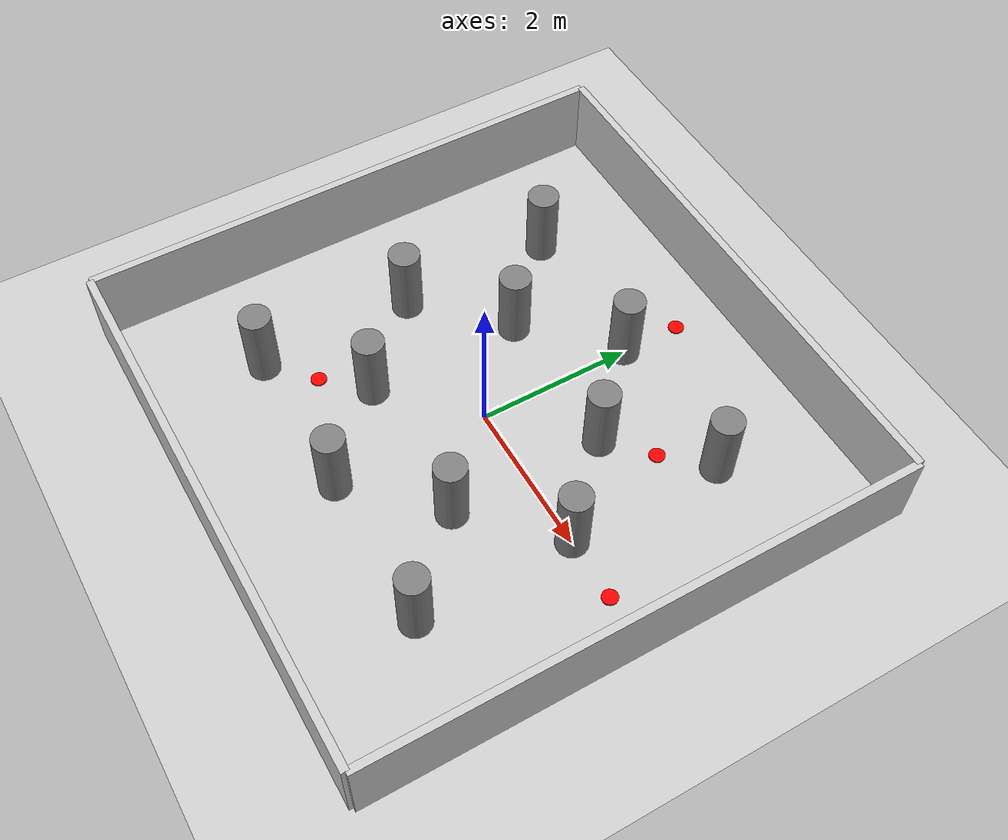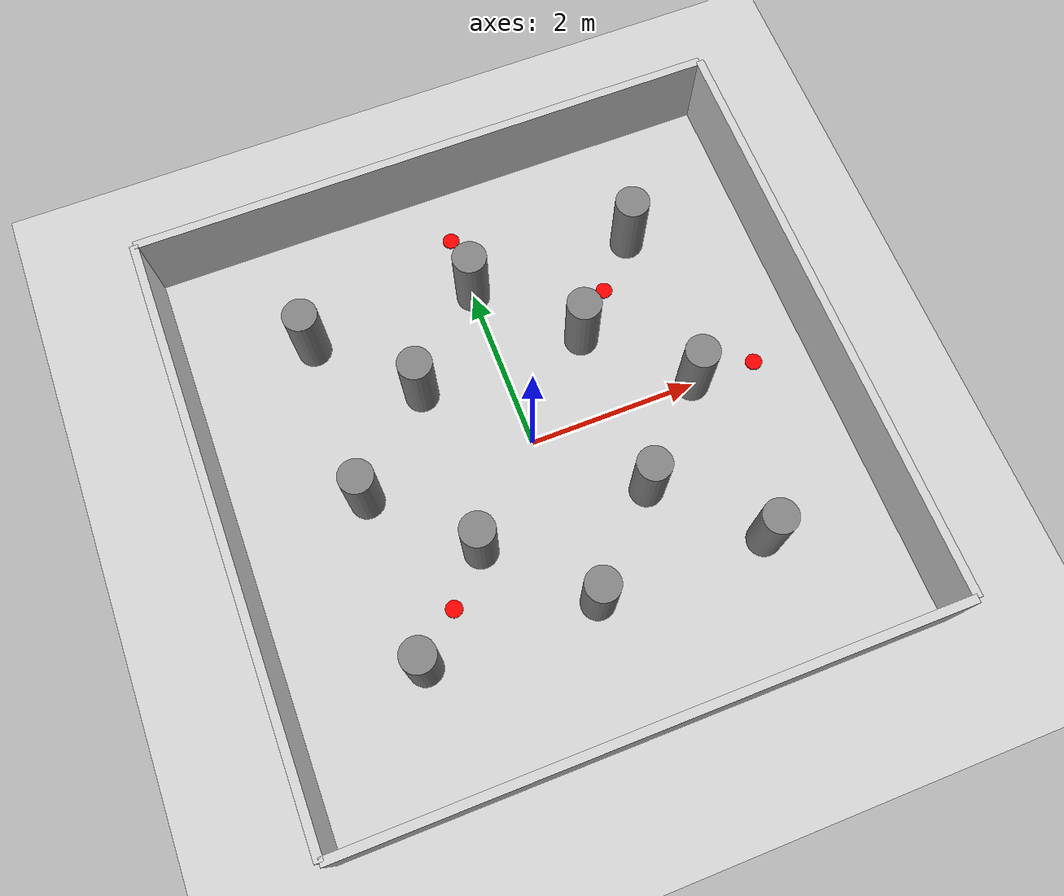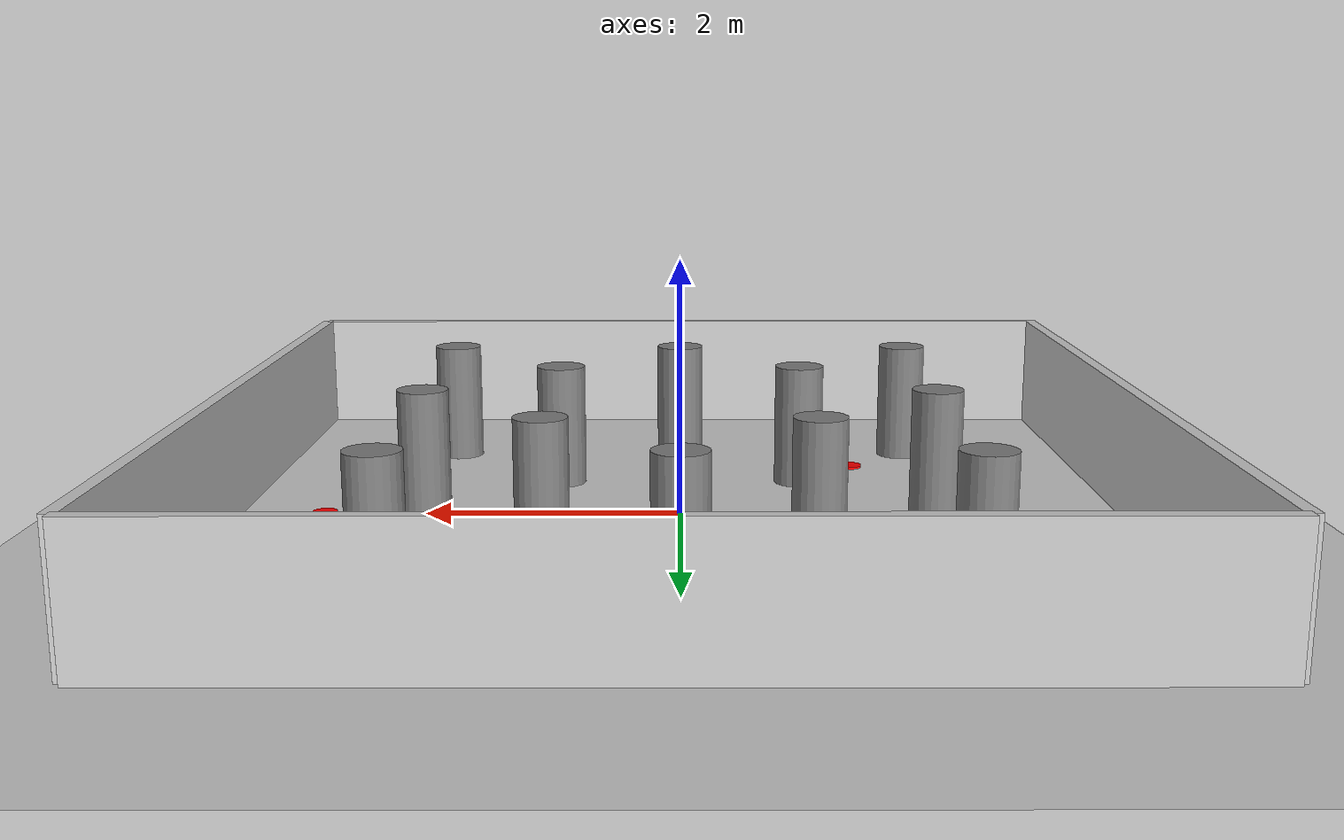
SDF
<?xml version="1.0" ?>
<sdf version="1.6">
  <world name="stage2">
    <!-- Basic Elements -->
    <include><uri>model://ground_plane</uri></include>
    <include><uri>model://sun</uri></include>

    <!-- Boundary Walls (Keeping the same) -->
    <model name="wall1">
      <static>true</static>
      <pose>0 3.5 0.5 0 0 0</pose>
      <link name="link">
        <collision name="collision">
          <geometry><box><size>7 0.1 1</size></box></geometry>
        </collision>
        <visual name="visual">
          <geometry><box><size>7 0.1 1</size></box></geometry>
          <material><ambient>0.8 0.8 0.8 1</ambient></material>
        </visual>
      </link>
    </model>

    <model name="wall2">
      <static>true</static>
      <pose>0 -3.5 0.5 0 0 0</pose>
      <link name="link">
        <collision name="collision">
          <geometry><box><size>7 0.1 1</size></box></geometry>
        </collision>
        <visual name="visual">
          <geometry><box><size>7 0.1 1</size></box></geometry>
          <material><ambient>0.8 0.8 0.8 1</ambient></material>
        </visual>
      </link>
    </model>

    <model name="wall3">
      <static>true</static>
      <pose>3.5 0 0.5 0 0 1.5708</pose>
      <link name="link">
        <collision name="collision">
          <geometry><box><size>7 0.1 1</size></box></geometry>
        </collision>
        <visual name="visual">
          <geometry><box><size>7 0.1 1</size></box></geometry>
          <material><ambient>0.8 0.8 0.8 1</ambient></material>
        </visual>
      </link>
    </model>

    <model name="wall4">
      <static>true</static>
      <pose>-3.5 0 0.5 0 0 1.5708</pose>
      <link name="link">
        <collision name="collision">
          <geometry><box><size>7 0.1 1</size></box></geometry>
        </collision>
        <visual name="visual">
          <geometry><box><size>7 0.1 1</size></box></geometry>
          <material><ambient>0.8 0.8 0.8 1</ambient></material>
        </visual>
      </link>
    </model>

    <!-- Inner Square Obstacles (4 corners) -->
    <model name="obstacle1">
      <static>true</static>
      <pose>-1 1 0.5 0 0 0</pose>
      <link name="link">
        <collision name="collision">
          <geometry><cylinder><radius>0.2</radius><length>1</length></cylinder></geometry>
        </collision>
        <visual name="visual">
          <geometry><cylinder><radius>0.2</radius><length>1</length></cylinder></geometry>
          <material><ambient>0.5 0.5 0.5 1</ambient></material>
        </visual>
      </link>
    </model>

    <model name="obstacle2">
      <static>true</static>
      <pose>1 1 0.5 0 0 0</pose>
      <link name="link">
        <collision name="collision">
          <geometry><cylinder><radius>0.2</radius><length>1</length></cylinder></geometry>
        </collision>
        <visual name="visual">
          <geometry><cylinder><radius>0.2</radius><length>1</length></cylinder></geometry>
          <material><ambient>0.5 0.5 0.5 1</ambient></material>
        </visual>
      </link>
    </model>

    <model name="obstacle3">
      <static>true</static>
      <pose>-1 -1 0.5 0 0 0</pose>
      <link name="link">
        <collision name="collision">
          <geometry><cylinder><radius>0.2</radius><length>1</length></cylinder></geometry>
        </collision>
        <visual name="visual">
          <geometry><cylinder><radius>0.2</radius><length>1</length></cylinder></geometry>
          <material><ambient>0.5 0.5 0.5 1</ambient></material>
        </visual>
      </link>
    </model>

    <model name="obstacle4">
      <static>true</static>
      <pose>1 -1 0.5 0 0 0</pose>
      <link name="link">
        <collision name="collision">
          <geometry><cylinder><radius>0.2</radius><length>1</length></cylinder></geometry>
        </collision>
        <visual name="visual">
          <geometry><cylinder><radius>0.2</radius><length>1</length></cylinder></geometry>
          <material><ambient>0.5 0.5 0.5 1</ambient></material>
        </visual>
      </link>
    </model>

    <!-- Outer Square Obstacles (4 corners) -->
    <model name="obstacle5">
      <static>true</static>
      <pose>-2 2 0.5 0 0 0</pose>
      <link name="link">
        <collision name="collision">
          <geometry><cylinder><radius>0.2</radius><length>1</length></cylinder></geometry>
        </collision>
        <visual name="visual">
          <geometry><cylinder><radius>0.2</radius><length>1</length></cylinder></geometry>
          <material><ambient>0.5 0.5 0.5 1</ambient></material>
        </visual>
      </link>
    </model>

    <model name="obstacle6">
      <static>true</static>
      <pose>2 2 0.5 0 0 0</pose>
      <link name="link">
        <collision name="collision">
          <geometry><cylinder><radius>0.2</radius><length>1</length></cylinder></geometry>
        </collision>
        <visual name="visual">
          <geometry><cylinder><radius>0.2</radius><length>1</length></cylinder></geometry>
          <material><ambient>0.5 0.5 0.5 1</ambient></material>
        </visual>
      </link>
    </model>

    <model name="obstacle7">
      <static>true</static>
      <pose>-2 -2 0.5 0 0 0</pose>
      <link name="link">
        <collision name="collision">
          <geometry><cylinder><radius>0.2</radius><length>1</length></cylinder></geometry>
        </collision>
        <visual name="visual">
          <geometry><cylinder><radius>0.2</radius><length>1</length></cylinder></geometry>
          <material><ambient>0.5 0.5 0.5 1</ambient></material>
        </visual>
      </link>
    </model>

    <model name="obstacle8">
      <static>true</static>
      <pose>2 -2 0.5 0 0 0</pose>
      <link name="link">
        <collision name="collision">
          <geometry><cylinder><radius>0.2</radius><length>1</length></cylinder></geometry>
        </collision>
        <visual name="visual">
          <geometry><cylinder><radius>0.2</radius><length>1</length></cylinder></geometry>
          <material><ambient>0.5 0.5 0.5 1</ambient></material>
        </visual>
      </link>
    </model>

    <!-- Cross Pattern Obstacles -->
    <model name="obstacle9">
      <static>true</static>
      <pose>0 2 0.5 0 0 0</pose>
      <link name="link">
        <collision name="collision">
          <geometry><cylinder><radius>0.2</radius><length>1</length></cylinder></geometry>
        </collision>
        <visual name="visual">
          <geometry><cylinder><radius>0.2</radius><length>1</length></cylinder></geometry>
          <material><ambient>0.5 0.5 0.5 1</ambient></material>
        </visual>
      </link>
    </model>

    <model name="obstacle10">
      <static>true</static>
      <pose>0 -2 0.5 0 0 0</pose>
      <link name="link">
        <collision name="collision">
          <geometry><cylinder><radius>0.2</radius><length>1</length></cylinder></geometry>
        </collision>
        <visual name="visual">
          <geometry><cylinder><radius>0.2</radius><length>1</length></cylinder></geometry>
          <material><ambient>0.5 0.5 0.5 1</ambient></material>
        </visual>
      </link>
    </model>

    <model name="obstacle11">
      <static>true</static>
      <pose>2 0 0.5 0 0 0</pose>
      <link name="link">
        <collision name="collision">
          <geometry><cylinder><radius>0.2</radius><length>1</length></cylinder></geometry>
        </collision>
        <visual name="visual">
          <geometry><cylinder><radius>0.2</radius><length>1</length></cylinder></geometry>
          <material><ambient>0.5 0.5 0.5 1</ambient></material>
        </visual>
      </link>
    </model>

    <model name="obstacle12">
      <static>true</static>
      <pose>-2 0 0.5 0 0 0</pose>
      <link name="link">
        <collision name="collision">
          <geometry><cylinder><radius>0.2</radius><length>1</length></cylinder></geometry>
        </collision>
        <visual name="visual">
          <geometry><cylinder><radius>0.2</radius><length>1</length></cylinder></geometry>
          <material><ambient>0.5 0.5 0.5 1</ambient></material>
        </visual>
      </link>
    </model>
    <model name="goal1">
      <static>true</static>
      <pose>1.5 1.5 0.01 0 0 0</pose>
      <link name="link">
        <visual name="visual">
          <geometry>
            <cylinder><radius>0.1</radius><length>0.02</length></cylinder>
          </geometry>
          <material>
            <ambient>1 0 0 1</ambient>
            <diffuse>1 0 0 1</diffuse>
            <emissive>1 0 0 1</emissive>
          </material>
        </visual>
      </link>
    </model>

    <model name="goal2">
      <static>true</static>
      <pose>-1.5 -1.5 0.01 0 0 0</pose>
      <link name="link">
        <visual name="visual">
          <geometry>
            <cylinder><radius>0.1</radius><length>0.02</length></cylinder>
          </geometry>
          <material>
            <ambient>1 0 0 1</ambient>
            <diffuse>1 0 0 1</diffuse>
            <emissive>1 0 0 1</emissive>
          </material>
        </visual>
      </link>
    </model>

    <model name="goal3">
      <static>true</static>
      <pose>0.0 2.8 0.01 0 0 0</pose>
      <link name="link">
        <visual name="visual">
          <geometry>
            <cylinder><radius>0.1</radius><length>0.02</length></cylinder>
          </geometry>
          <material>
            <ambient>1 0 0 1</ambient>
            <diffuse>1 0 0 1</diffuse>
            <emissive>1 0 0 1</emissive>
          </material>
        </visual>
      </link>
    </model>

    <model name="goal4">
      <static>true</static>
      <pose>2.8 0.0 0.01 0 0 0</pose>
      <link name="link">
        <visual name="visual">
          <geometry>
            <cylinder><radius>0.1</radius><length>0.02</length></cylinder>
          </geometry>
          <material>
            <ambient>1 0 0 1</ambient>
            <diffuse>1 0 0 1</diffuse>
            <emissive>1 0 0 1</emissive>
          </material>
        </visual>
      </link>
    </model>

  </world>
</sdf>
